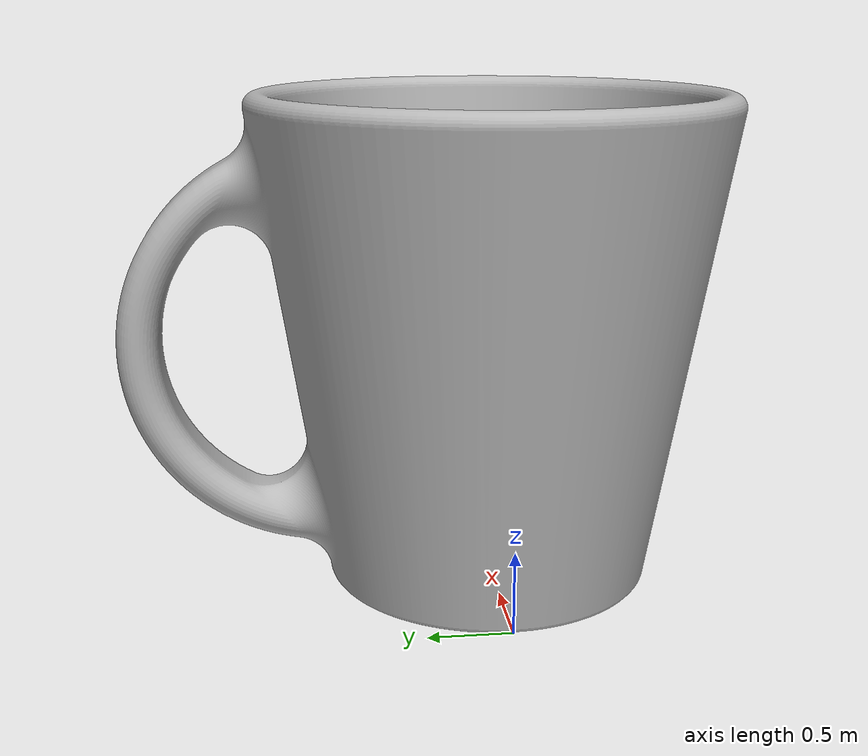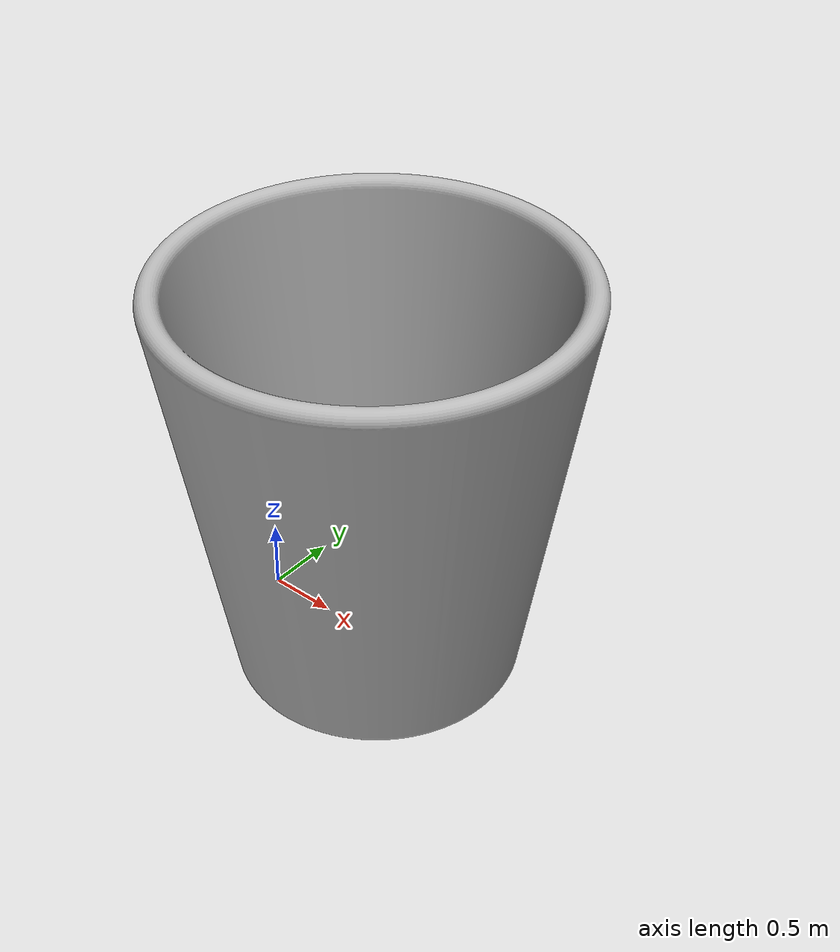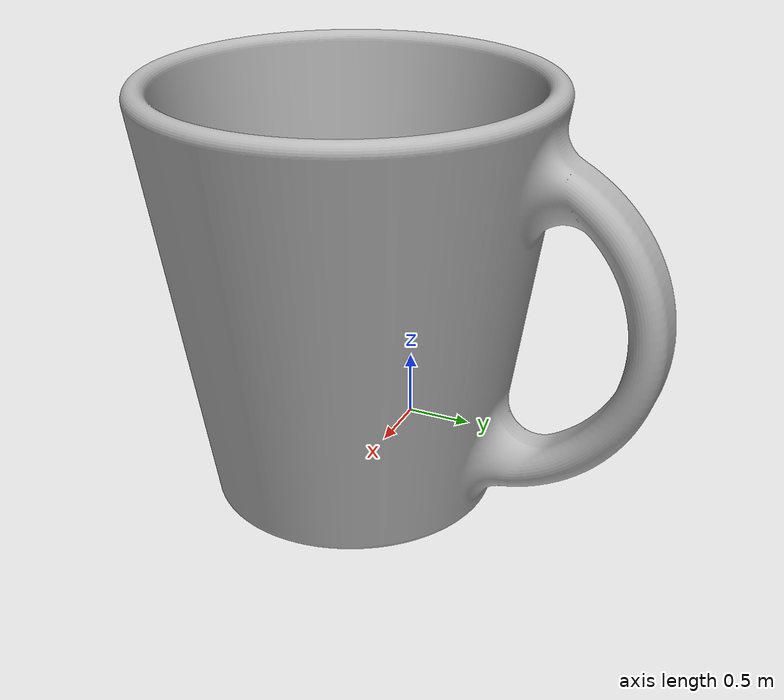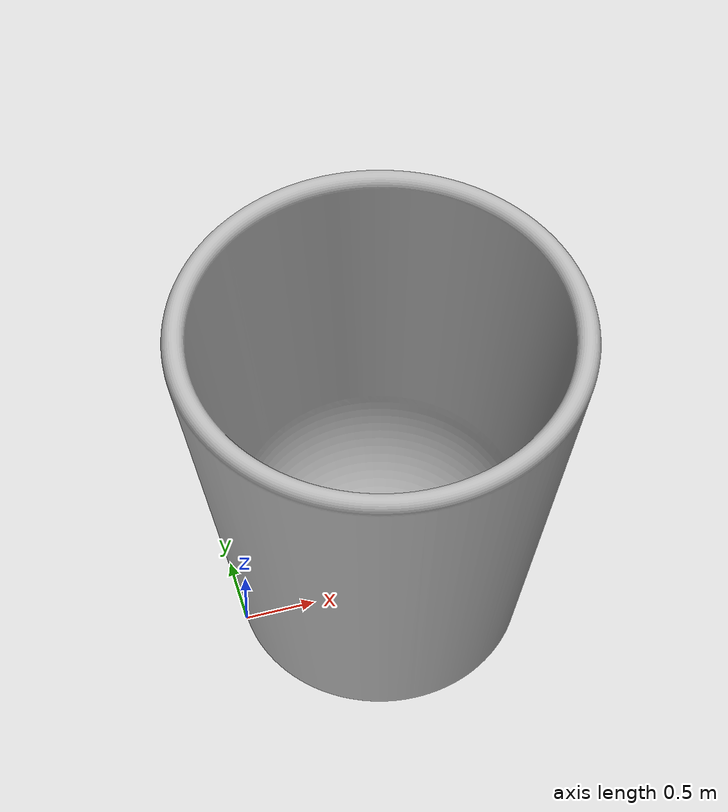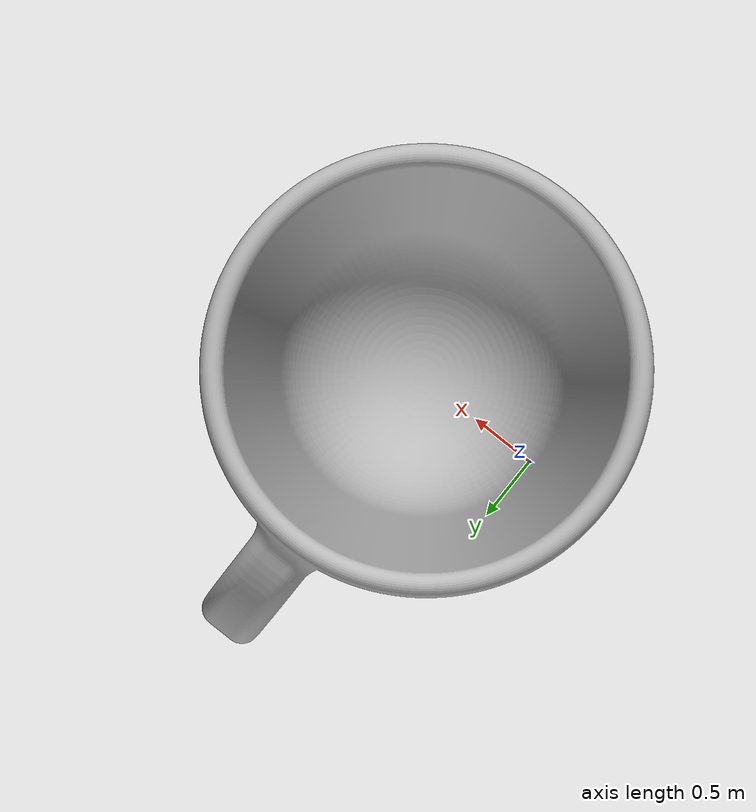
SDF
<?xml version="1.0" ?>
<sdf version="1.5">
  <model name="mpnet_coffee">
    <pose frame="world">1 0 0.0 1.57079632679 0 0</pose>
    <static>true</static>
    <link name="link">
      <inertial>
        <mass>0.1</mass>
      </inertial>
      <visual name="visual">
        <geometry>
          <mesh>
            <uri>model://mpnet_coffee/meshes/coffee.stl</uri>
            <scale>1 1 1</scale>
          </mesh>
        </geometry>
      </visual>
    </link>
  </model>
</sdf>
